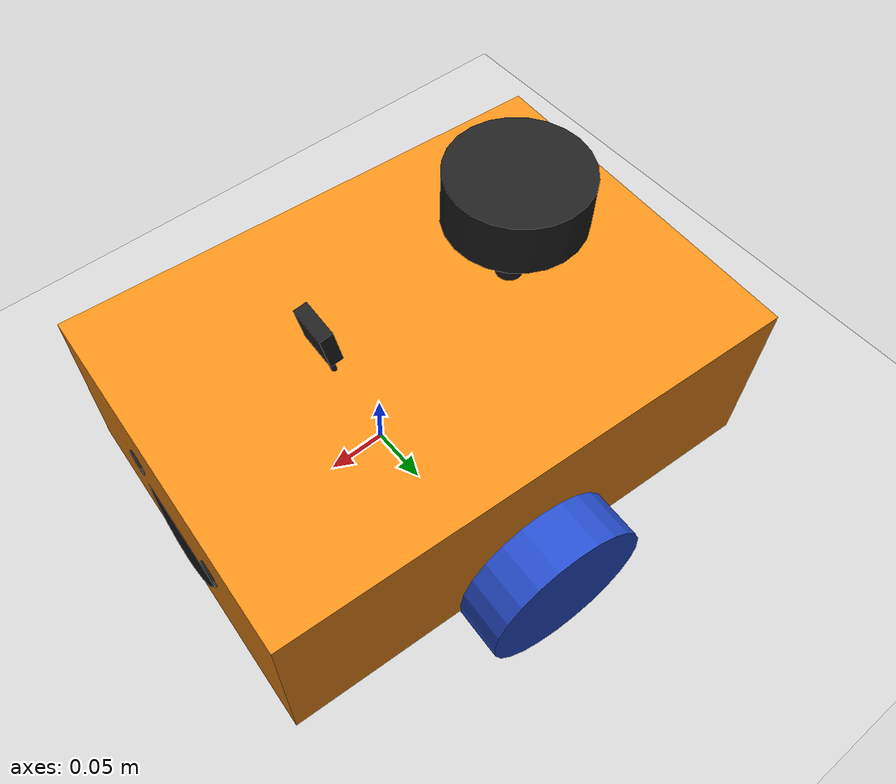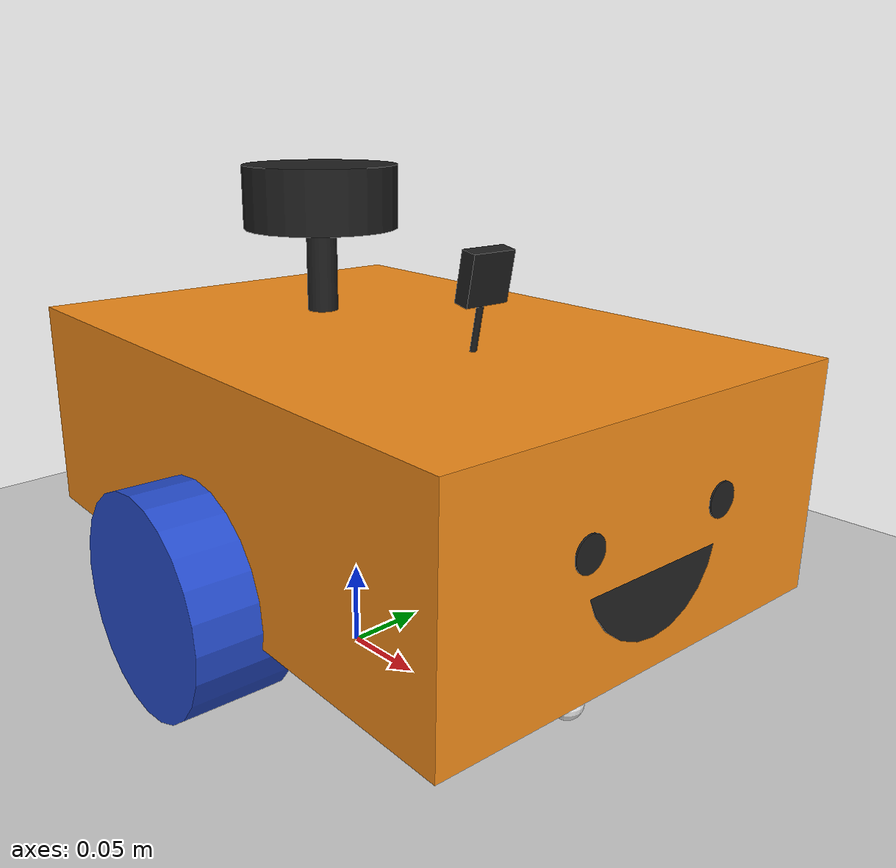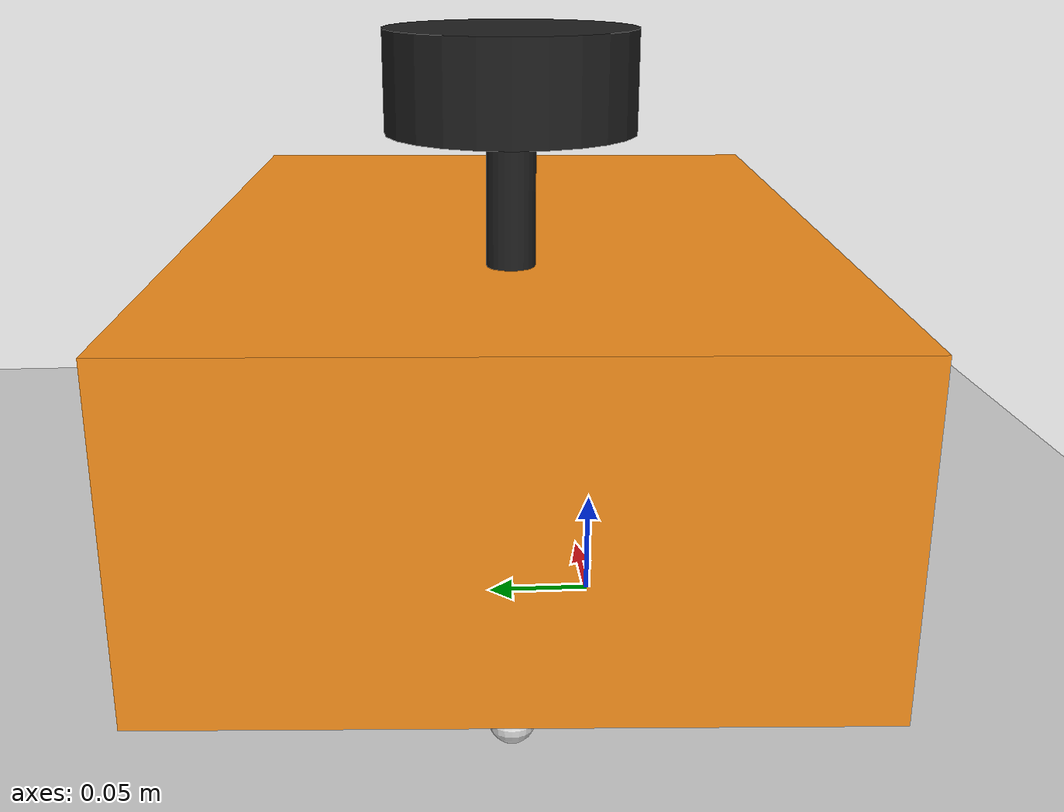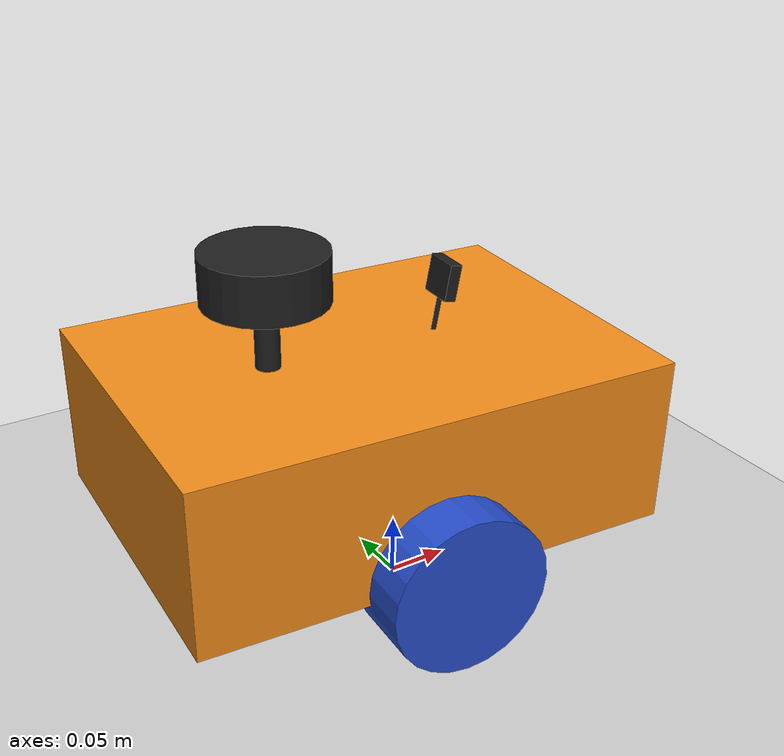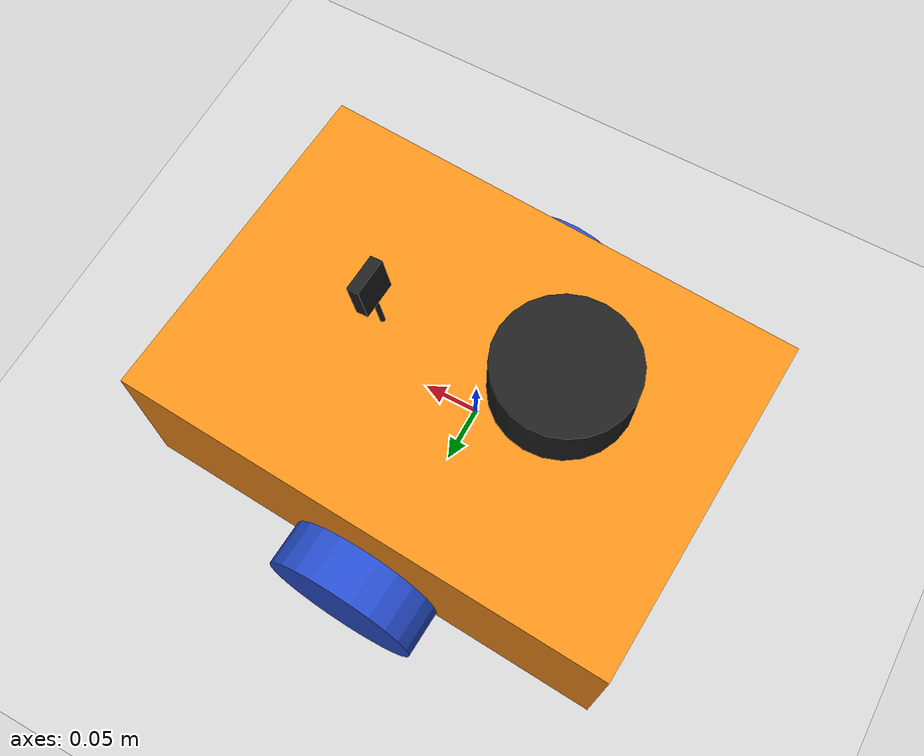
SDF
<sdf version="1.7">
 <world name="default">
  <light name="sun" type="directional">
   <pose>0 0 10 0 -0 0</pose>
   <diffuse>0.8 0.8 0.8 1</diffuse>
   <specular>0.2 0.2 0.2 1</specular>
   <attenuation>
    <range>1000</range>
    <constant>0.9</constant>
    <linear>0.01</linear>
    <quadratic>0.001</quadratic>
   </attenuation>
   <direction>-0.5 0.1 -0.9</direction>
   <spot><inner_angle>0</inner_angle><outer_angle>0</outer_angle><falloff>0</falloff></spot>
  </light>
  <model name="ground_plane">
   <static>1</static>
   <link name="link">
    <collision name="collision">
     <geometry><plane><normal>0 0 1</normal><size>100 100</size></plane></geometry>
     <surface>
      <contact><collide_bitmask>65535</collide_bitmask></contact>
      <friction><ode><mu>100</mu><mu2>50</mu2></ode></friction>
     </surface>
    </collision>
    <visual name="visual">
     <cast_shadows>0</cast_shadows>
     <geometry><plane><normal>0 0 1</normal><size>100 100</size></plane></geometry>
     <material>
      <script><uri>file://media/materials/scripts/gazebo.material</uri><name>Gazebo/Grey</name></script>
     </material>
    </visual>
   </link>
  </model>
  <gravity>0 0 -9.8</gravity>
  <magnetic_field>6e-06 2.3e-05 -4.2e-05</magnetic_field>
  <atmosphere type="adiabatic"/>
  <physics type="ode">
   <max_step_size>0.001</max_step_size>
   <real_time_factor>1</real_time_factor>
   <real_time_update_rate>1000</real_time_update_rate>
  </physics>
  <scene><ambient>0.4 0.4 0.4 1</ambient><background>0.7 0.7 0.7 1</background><shadows>1</shadows></scene>
  <audio><device>default</device></audio>
  <spherical_coordinates>
   <surface_model>EARTH_WGS84</surface_model>
   <latitude_deg>0</latitude_deg>
   <longitude_deg>0</longitude_deg>
   <elevation>0</elevation>
   <heading_deg>0</heading_deg>
  </spherical_coordinates>
  <model name="my_bot">
   <link name="base_link">
    <inertial>
     <pose>-0.012177 0 0.078387 0 -0 0</pose>
     <mass>0.62</mass>
     <inertia>
      <ixx>0.00620859</ixx>
      <ixy>0</ixy>
      <ixz>0.000997527</ixz>
      <iyy>0.0105063</iyy>
      <iyz>0</iyz>
      <izz>0.0109568</izz>
     </inertia>
    </inertial>
    <collision name="base_link_fixed_joint_lump__chassis_collision">
     <pose>0 0 0.059 0 -0 0</pose>
     <geometry><box><size>0.4 0.28 0.138</size></box></geometry>
    </collision>
    <collision name="base_link_fixed_joint_lump__caster_wheel_collision_1">
     <pose>-0.125 0 -0.055 0 -0 0</pose>
     <geometry><sphere><radius>0.01</radius></sphere></geometry>
     <surface><friction><ode><mu>0.001</mu><mu2>0.001</mu2></ode></friction></surface>
    </collision>
    <collision name="base_link_fixed_joint_lump__front_caster_wheel_collision_2">
     <pose>0.15 0 -0.055 0 -0 0</pose>
     <geometry><sphere><radius>0.01</radius></sphere></geometry>
     <surface><friction><ode><mu>0.001</mu><mu2>0.001</mu2></ode></friction></surface>
    </collision>
    <collision name="base_link_fixed_joint_lump__laser_frame_collision_3">
     <pose>-0.078 0 0.202 0 -0 0</pose>
     <geometry><cylinder><length>0.04</length><radius>0.05</radius></cylinder></geometry>
    </collision>
    <visual name="base_link_fixed_joint_lump__chassis_visual">
     <pose>0 0 0.059 0 -0 0</pose>
     <geometry><box><size>0.4 0.28 0.138</size></box></geometry>
     <material>
      <script><name>Gazebo/Orange</name><uri>file://media/materials/scripts/gazebo.material</uri></script>
     </material>
    </visual>
    <visual name="base_link_fixed_joint_lump__camera_link_visual_1">
     <pose>0.076 0 0.171 0 0.18 0</pose>
     <geometry><box><size>0.01 0.03 0.03</size></box></geometry>
     <material>
      <script><name>Gazebo/Black</name><uri>file://media/materials/scripts/gazebo.material</uri></script>
     </material>
    </visual>
    <visual name="base_link_fixed_joint_lump__camera_link_visual_2">
     <pose>0.067049 0 0.121808 0 0.18 0</pose>
     <geometry><cylinder><length>0.1</length><radius>0.002</radius></cylinder></geometry>
     <material>
      <script><name>Gazebo/Black</name><uri>file://media/materials/scripts/gazebo.material</uri></script>
     </material>
    </visual>
    <visual name="base_link_fixed_joint_lump__caster_wheel_visual_3">
     <pose>-0.125 0 -0.055 0 -0 0</pose>
     <geometry><sphere><radius>0.01</radius></sphere></geometry>
     <material>
      <script><name>Gazebo/White</name><uri>file://media/materials/scripts/gazebo.material</uri></script>
     </material>
    </visual>
    <visual name="base_link_fixed_joint_lump__face_link_visual_4">
     <pose>0.2 0.05 0.069 3.14159 1.57079 3.14159</pose>
     <geometry><cylinder><length>0.002</length><radius>0.01</radius></cylinder></geometry>
     <material>
      <script><name>Gazebo/Black</name><uri>file://media/materials/scripts/gazebo.material</uri></script>
     </material>
    </visual>
    <visual name="base_link_fixed_joint_lump__face_link_visual_5">
     <pose>0.2 -0.05 0.069 3.14159 1.57079 3.14159</pose>
     <geometry><cylinder><length>0.002</length><radius>0.01</radius></cylinder></geometry>
     <material>
      <script><name>Gazebo/Black</name><uri>file://media/materials/scripts/gazebo.material</uri></script>
     </material>
    </visual>
    <visual name="base_link_fixed_joint_lump__face_link_visual_6">
     <pose>0.189 0 0.059 0 1.5 0</pose>
     <geometry><cylinder><length>0.02</length><radius>0.05</radius></cylinder></geometry>
     <material>
      <script><name>Gazebo/Black</name><uri>file://media/materials/scripts/gazebo.material</uri></script>
     </material>
    </visual>
    <visual name="base_link_fixed_joint_lump__front_caster_wheel_visual_7">
     <pose>0.15 0 -0.055 0 -0 0</pose>
     <geometry><sphere><radius>0.01</radius></sphere></geometry>
     <material>
      <script><name>Gazebo/White</name><uri>file://media/materials/scripts/gazebo.material</uri></script>
     </material>
    </visual>
    <visual name="base_link_fixed_joint_lump__laser_frame_visual_8">
     <pose>-0.078 0 0.202 0 -0 0</pose>
     <geometry><cylinder><length>0.04</length><radius>0.05</radius></cylinder></geometry>
     <material>
      <script><name>Gazebo/Black</name><uri>file://media/materials/scripts/gazebo.material</uri></script>
     </material>
    </visual>
    <visual name="base_link_fixed_joint_lump__laser_frame_visual_9">
     <pose>-0.078 0 0.152 0 -0 0</pose>
     <geometry><cylinder><length>0.1</length><radius>0.01</radius></cylinder></geometry>
     <material>
      <script><name>Gazebo/Black</name><uri>file://media/materials/scripts/gazebo.material</uri></script>
     </material>
    </visual>
    <sensor name="camera" type="camera">
     <visualize>1</visualize>
     <update_rate>10</update_rate>
     <camera>
      <horizontal_fov>1.089</horizontal_fov>
      <image><format>R8G8B8</format><width>640</width><height>480</height></image>
      <clip><near>0.05</near><far>8</far></clip>
     </camera>
     <plugin name="camera_controller" filename="libgazebo_ros_camera.so">
      <frame_name>camera_link_optical</frame_name>
     </plugin>
     <pose>0.076 0 0.171 0 0.18 0</pose>
    </sensor>
    <sensor name="laser" type="ray">
     <visualize>0</visualize>
     <update_rate>10</update_rate>
     <ray>
      <scan>
       <horizontal>
        <samples>360</samples>
        <min_angle>-3.14</min_angle>
        <max_angle>3.14</max_angle>
        <resolution>1</resolution>
       </horizontal>
       <vertical><samples>1</samples><min_angle>0</min_angle><max_angle>0</max_angle></vertical>
      </scan>
      <range><min>0.3</min><max>12</max></range>
     </ray>
     <plugin name="laser_controller" filename="libgazebo_ros_ray_sensor.so">
      <ros><argument>~/out:=scan</argument></ros>
      <output_type>sensor_msgs/LaserScan</output_type>
      <frame_name>laser_frame</frame_name>
     </plugin>
     <pose>-0.078 0 0.202 0 -0 0</pose>
    </sensor>
   </link>
   <joint name="left_wheel_joint" type="revolute">
    <pose relative_to="base_link">0 0.1485 0 -1.5708 0 0</pose>
    <parent>base_link</parent>
    <child>left_wheel</child>
    <axis>
     <xyz>0 0 1</xyz>
     <limit><lower>-1e+16</lower><upper>1e+16</upper></limit>
     <dynamics><spring_reference>0</spring_reference><spring_stiffness>0</spring_stiffness></dynamics>
    </axis>
   </joint>
   <link name="left_wheel">
    <pose relative_to="left_wheel_joint">0 0 0 0 -0 0</pose>
    <inertial>
     <mass>0.05</mass>
     <inertia>
      <ixx>6.78125e-05</ixx>
      <ixy>0</ixy>
      <ixz>0</ixz>
      <iyy>6.78125e-05</iyy>
      <iyz>0</iyz>
      <izz>0.000105625</izz>
     </inertia>
    </inertial>
    <collision name="left_wheel_collision">
     <geometry><sphere><radius>0.065</radius></sphere></geometry>
    </collision>
    <visual name="left_wheel_visual">
     <geometry><cylinder><length>0.06</length><radius>0.065</radius></cylinder></geometry>
     <material>
      <script><name>Gazebo/Blue</name><uri>file://media/materials/scripts/gazebo.material</uri></script>
     </material>
    </visual>
   </link>
   <joint name="right_wheel_joint" type="revolute">
    <pose relative_to="base_link">0 -0.1485 0 1.5708 -0 0</pose>
    <parent>base_link</parent>
    <child>right_wheel</child>
    <axis>
     <xyz>0 0 -1</xyz>
     <limit><lower>-1e+16</lower><upper>1e+16</upper></limit>
     <dynamics><spring_reference>0</spring_reference><spring_stiffness>0</spring_stiffness></dynamics>
    </axis>
   </joint>
   <link name="right_wheel">
    <pose relative_to="right_wheel_joint">0 0 0 0 -0 0</pose>
    <inertial>
     <mass>0.05</mass>
     <inertia>
      <ixx>6.78125e-05</ixx>
      <ixy>0</ixy>
      <ixz>0</ixz>
      <iyy>6.78125e-05</iyy>
      <iyz>0</iyz>
      <izz>0.000105625</izz>
     </inertia>
    </inertial>
    <collision name="right_wheel_collision">
     <geometry><sphere><radius>0.065</radius></sphere></geometry>
    </collision>
    <visual name="right_wheel_visual">
     <geometry><cylinder><length>0.06</length><radius>0.065</radius></cylinder></geometry>
     <material>
      <script><name>Gazebo/Blue</name><uri>file://media/materials/scripts/gazebo.material</uri></script>
     </material>
    </visual>
   </link>
   <static>0</static>
   <plugin name="gazebo_ros2_control" filename="libgazebo_ros2_control.so">
    <parameters>/home/daopctn/real_ws/install/articubot_one/share/articubot_one/config/my_controllers.yaml</parameters>
    <parameters>/home/daopctn/real_ws/install/articubot_one/share/articubot_one/config/gaz_ros2_ctl_use_sim.yaml</parameters>
   </plugin>
   <pose>-0.008276 0.041008 0.065 -4e-06 -0 -0.05651</pose>
  </model>
 </world>
</sdf>
